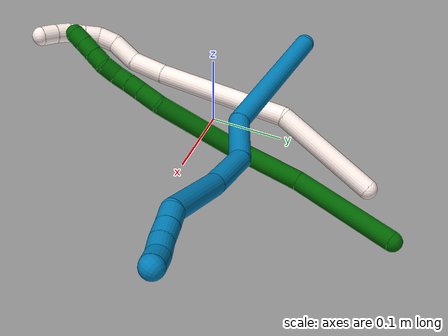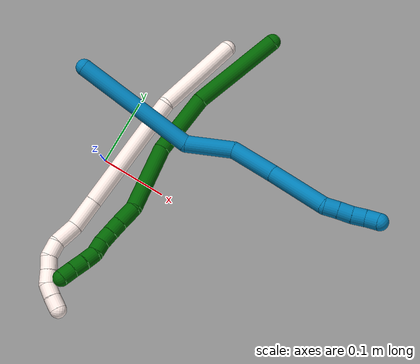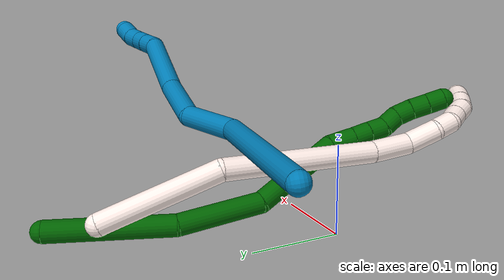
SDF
<sdf version="1.7">
 <world name="default">
  <model name="photoneo_s_sensor">
   <static>1</static>
   <pose>0 0 2 1.57079 1.57079 3.14159</pose>
   <link name="link">
    <inertial><mass>0.1</mass></inertial>
    <sensor name="sensor" type="depth">
     <update_rate>30</update_rate>
     <camera>
      <horizontal_fov>1.22</horizontal_fov>
      <image><width>1920</width><height>1200</height><format>B8G8R8</format></image>
      <clip><near>0.1</near><far>4</far></clip>
      <depth_camera><output>points</output></depth_camera>
     </camera>
     <plugin name="camera_plugin" filename="libgazebo_ros_depth_camera.so">
      <baseline>0.2</baseline>
      <alwaysOn>1</alwaysOn>
      <updateRate>0.0</updateRate>
      <cameraName>camera_ir</cameraName>
      <imageTopicName>/camera/color/image_raw</imageTopicName>
      <cameraInfoTopicName>/camera/color/camera_info</cameraInfoTopicName>
      <depthImageTopicName>/camera/depth/image_raw</depthImageTopicName>
      <depthImageCameraInfoTopicName>/camera/depth/camera_info</depthImageCameraInfoTopicName>
      <pointCloudTopicName>/camera/depth/points</pointCloudTopicName>
      <frameName>fr_optical</frameName>
      <pointCloudCutoff>0.1</pointCloudCutoff>
      <pointCloudCutoffMax>2.0</pointCloudCutoffMax>
      <distortionK1>0</distortionK1>
      <distortionK2>0</distortionK2>
      <distortionK3>0</distortionK3>
      <distortionT1>0</distortionT1>
      <distortionT2>0</distortionT2>
      <CxPrime>0</CxPrime>
      <Cx>0</Cx>
      <Cy>0</Cy>
      <focalLength>0</focalLength>
      <hackBaseline>0</hackBaseline>
     </plugin>
    </sensor>
   </link>
  </model>
  <model name="bin">
   <static>1</static>
   <link name="bottom">
    <collision name="collision-bottom">
     <pose>0 0 -0.01 0 -0 0</pose>
     <geometry><box><size>0.8 0.6 0.02</size></box></geometry>
     <surface>
      <friction><ode><mu>100</mu><mu2>100</mu2></ode></friction>
      <contact><collide_bitmask>65535</collide_bitmask></contact>
     </surface>
    </collision>
   </link>
   <link name="west_wall">
    <collision name="collision-west_wall">
     <pose>-0.41 0 0.1 0 -0 0</pose>
     <geometry><box><size>0.02 0.6 0.2</size></box></geometry>
     <surface>
      <friction><ode><mu>100</mu><mu2>100</mu2></ode></friction>
      <contact><collide_bitmask>65535</collide_bitmask></contact>
     </surface>
    </collision>
   </link>
   <link name="east_wall">
    <collision name="collision-east_wall">
     <pose>0.41 0 0.1 0 -0 0</pose>
     <geometry><box><size>0.02 0.6 0.2</size></box></geometry>
     <surface>
      <friction><ode><mu>100</mu><mu2>100</mu2></ode></friction>
      <contact><collide_bitmask>65535</collide_bitmask></contact>
     </surface>
    </collision>
   </link>
   <link name="south_wall">
    <collision name="collision-south_wall">
     <pose>0 -0.31 0.1 0 -0 0</pose>
     <geometry><box><size>0.8 0.02 0.2</size></box></geometry>
     <surface>
      <friction><ode><mu>100</mu><mu2>100</mu2></ode></friction>
      <contact><collide_bitmask>65535</collide_bitmask></contact>
     </surface>
    </collision>
   </link>
   <link name="north_wall">
    <collision name="collision-north_wall">
     <pose>0 0.31 0.1 0 -0 0</pose>
     <geometry><box><size>0.8 0.02 0.2</size></box></geometry>
     <surface>
      <friction><ode><mu>100</mu><mu2>100</mu2></ode></friction>
      <contact><collide_bitmask>65535</collide_bitmask></contact>
     </surface>
    </collision>
   </link>
  </model>
  <model name="6">
   <static>0</static>
   <link name="6">
    <collision name="collision-cylinder-e_1_1_4">
     <pose>0.01043 -0.006299 -0.068956 3.05049 0.149511 2.04816</pose>
     <geometry><cylinder><radius>0.0125</radius><length>0.140049</length></cylinder></geometry>
     <surface>
      <friction><ode><mu>1.16</mu><mu2>1.16</mu2><slip1>0</slip1><slip2>0</slip2></ode></friction>
      <contact><ode><kp>1e+06</kp><kd>1</kd><max_vel>0</max_vel><min_depth>0.001</min_depth></ode></contact>
     </surface>
    </collision>
    <visual name="visual-cylinder-e_1_1_4">
     <pose>0.01043 -0.006299 -0.068956 3.05049 0.149511 2.04816</pose>
     <geometry><cylinder><radius>0.0125</radius><length>0.140049</length></cylinder></geometry>
     <material><ambient>0 0.392157 0.003922 1</ambient></material>
    </visual>
    <collision name="collision-cylinder-e_2_4_5">
     <pose>0.028938 -0.029738 -0.18228 2.77295 0.168214 0.849345</pose>
     <geometry><cylinder><radius>0.0125</radius><length>0.096487</length></cylinder></geometry>
     <surface>
      <friction><ode><mu>1.16</mu><mu2>1.16</mu2><slip1>0</slip1><slip2>0</slip2></ode></friction>
      <contact><ode><kp>1e+06</kp><kd>1</kd><max_vel>0</max_vel><min_depth>0.001</min_depth></ode></contact>
     </surface>
    </collision>
    <visual name="visual-cylinder-e_2_4_5">
     <pose>0.028938 -0.029738 -0.18228 2.77295 0.168214 0.849345</pose>
     <geometry><cylinder><radius>0.0125</radius><length>0.096487</length></cylinder></geometry>
     <material><ambient>0 0.392157 0.003922 1</ambient></material>
    </visual>
    <collision name="collision-cylinder-e_3_5_6">
     <pose>0.036217 -0.083837 -0.267587 2.40725 -0.014469 -0.037615</pose>
     <geometry><cylinder><radius>0.0125</radius><length>0.110323</length></cylinder></geometry>
     <surface>
      <friction><ode><mu>1.16</mu><mu2>1.16</mu2><slip1>0</slip1><slip2>0</slip2></ode></friction>
      <contact><ode><kp>1e+06</kp><kd>1</kd><max_vel>0</max_vel><min_depth>0.001</min_depth></ode></contact>
     </surface>
    </collision>
    <visual name="visual-cylinder-e_3_5_6">
     <pose>0.036217 -0.083837 -0.267587 2.40725 -0.014469 -0.037615</pose>
     <geometry><cylinder><radius>0.0125</radius><length>0.110323</length></cylinder></geometry>
     <material><ambient>0 0.392157 0.003922 1</ambient></material>
    </visual>
    <collision name="collision-cylinder-e_4_6_7">
     <pose>0.035823 -0.125955 -0.322844 2.79577 0.026552 0.151745</pose>
     <geometry><cylinder><radius>0.0125</radius><length>0.030444</length></cylinder></geometry>
     <surface>
      <friction><ode><mu>1.16</mu><mu2>1.16</mu2><slip1>0</slip1><slip2>0</slip2></ode></friction>
      <contact><ode><kp>1e+06</kp><kd>1</kd><max_vel>0</max_vel><min_depth>0.001</min_depth></ode></contact>
     </surface>
    </collision>
    <visual name="visual-cylinder-e_4_6_7">
     <pose>0.035823 -0.125955 -0.322844 2.79577 0.026552 0.151745</pose>
     <geometry><cylinder><radius>0.0125</radius><length>0.030444</length></cylinder></geometry>
     <material><ambient>0 0.392157 0.003922 1</ambient></material>
    </visual>
    <collision name="collision-cylinder-e_5_7_8">
     <pose>0.036415 -0.134879 -0.346491 2.75799 0.018676 0.096105</pose>
     <geometry><cylinder><radius>0.0125</radius><length>0.020129</length></cylinder></geometry>
     <surface>
      <friction><ode><mu>1.16</mu><mu2>1.16</mu2><slip1>0</slip1><slip2>0</slip2></ode></friction>
      <contact><ode><kp>1e+06</kp><kd>1</kd><max_vel>0</max_vel><min_depth>0.001</min_depth></ode></contact>
     </surface>
    </collision>
    <visual name="visual-cylinder-e_5_7_8">
     <pose>0.036415 -0.134879 -0.346491 2.75799 0.018676 0.096105</pose>
     <geometry><cylinder><radius>0.0125</radius><length>0.020129</length></cylinder></geometry>
     <material><ambient>0 0.392157 0.003922 1</ambient></material>
    </visual>
    <collision name="collision-cylinder-e_6_8_9">
     <pose>0.037121 -0.142399 -0.365316 2.76507 0.050745 0.264849</pose>
     <geometry><cylinder><radius>0.0125</radius><length>0.020443</length></cylinder></geometry>
     <surface>
      <friction><ode><mu>1.16</mu><mu2>1.16</mu2><slip1>0</slip1><slip2>0</slip2></ode></friction>
      <contact><ode><kp>1e+06</kp><kd>1</kd><max_vel>0</max_vel><min_depth>0.001</min_depth></ode></contact>
     </surface>
    </collision>
    <visual name="visual-cylinder-e_6_8_9">
     <pose>0.037121 -0.142399 -0.365316 2.76507 0.050745 0.264849</pose>
     <geometry><cylinder><radius>0.0125</radius><length>0.020443</length></cylinder></geometry>
     <material><ambient>0 0.392157 0.003922 1</ambient></material>
    </visual>
    <collision name="collision-cylinder-e_7_9_10">
     <pose>0.036156 -0.152867 -0.382815 2.44373 -0.141084 -0.383655</pose>
     <geometry><cylinder><radius>0.0125</radius><length>0.021109</length></cylinder></geometry>
     <surface>
      <friction><ode><mu>1.16</mu><mu2>1.16</mu2><slip1>0</slip1><slip2>0</slip2></ode></friction>
      <contact><ode><kp>1e+06</kp><kd>1</kd><max_vel>0</max_vel><min_depth>0.001</min_depth></ode></contact>
     </surface>
    </collision>
    <visual name="visual-cylinder-e_7_9_10">
     <pose>0.036156 -0.152867 -0.382815 2.44373 -0.141084 -0.383655</pose>
     <geometry><cylinder><radius>0.0125</radius><length>0.021109</length></cylinder></geometry>
     <material><ambient>0 0.392157 0.003922 1</ambient></material>
    </visual>
    <collision name="collision-cylinder-e_8_10_11">
     <pose>0.032768 -0.162694 -0.400321 2.82494 -0.188203 -1.06773</pose>
     <geometry><cylinder><radius>0.0125</radius><length>0.020351</length></cylinder></geometry>
     <surface>
      <friction><ode><mu>1.16</mu><mu2>1.16</mu2><slip1>0</slip1><slip2>0</slip2></ode></friction>
      <contact><ode><kp>1e+06</kp><kd>1</kd><max_vel>0</max_vel><min_depth>0.001</min_depth></ode></contact>
     </surface>
    </collision>
    <visual name="visual-cylinder-e_8_10_11">
     <pose>0.032768 -0.162694 -0.400321 2.82494 -0.188203 -1.06773</pose>
     <geometry><cylinder><radius>0.0125</radius><length>0.020351</length></cylinder></geometry>
     <material><ambient>0 0.392157 0.003922 1</ambient></material>
    </visual>
    <collision name="collision-cylinder-e_9_11_12">
     <pose>0.029463 -0.168048 -0.419714 2.91884 -0.137265 -1.10222</pose>
     <geometry><cylinder><radius>0.0125</radius><length>0.020483</length></cylinder></geometry>
     <surface>
      <friction><ode><mu>1.16</mu><mu2>1.16</mu2><slip1>0</slip1><slip2>0</slip2></ode></friction>
      <contact><ode><kp>1e+06</kp><kd>1</kd><max_vel>0</max_vel><min_depth>0.001</min_depth></ode></contact>
     </surface>
    </collision>
    <visual name="visual-cylinder-e_9_11_12">
     <pose>0.029463 -0.168048 -0.419714 2.91884 -0.137265 -1.10222</pose>
     <geometry><cylinder><radius>0.0125</radius><length>0.020483</length></cylinder></geometry>
     <material><ambient>0 0.392157 0.003922 1</ambient></material>
    </visual>
    <collision name="collision-cylinder-e_10_12_2">
     <pose>0.026852 -0.172798 -0.439307 2.88842 -0.120141 -0.882946</pose>
     <geometry><cylinder><radius>0.0125</radius><length>0.020182</length></cylinder></geometry>
     <surface>
      <friction><ode><mu>1.16</mu><mu2>1.16</mu2><slip1>0</slip1><slip2>0</slip2></ode></friction>
      <contact><ode><kp>1e+06</kp><kd>1</kd><max_vel>0</max_vel><min_depth>0.001</min_depth></ode></contact>
     </surface>
    </collision>
    <visual name="visual-cylinder-e_10_12_2">
     <pose>0.026852 -0.172798 -0.439307 2.88842 -0.120141 -0.882946</pose>
     <geometry><cylinder><radius>0.0125</radius><length>0.020182</length></cylinder></geometry>
     <material><ambient>0 0.392157 0.003922 1</ambient></material>
    </visual>
    <collision name="collision-sphere-2">
     <pose>0.025643 -0.175308 -0.449006 0 -0 0</pose>
     <geometry><sphere><radius>0.0125</radius></sphere></geometry>
     <surface>
      <friction><ode><mu>1.16</mu><mu2>1.16</mu2><slip1>0</slip1><slip2>0</slip2></ode></friction>
      <contact><ode><kp>1e+06</kp><kd>1</kd><max_vel>0</max_vel><min_depth>0.001</min_depth></ode></contact>
     </surface>
    </collision>
    <visual name="visual-sphere-2">
     <pose>0.025643 -0.175308 -0.449006 0 -0 0</pose>
     <geometry><sphere><radius>0.0125</radius></sphere></geometry>
     <material><ambient>0 0.392157 0.003922 1</ambient></material>
    </visual>
    <collision name="collision-sphere-12">
     <pose>0.028061 -0.170289 -0.429608 0 -0 0</pose>
     <geometry><sphere><radius>0.0125</radius></sphere></geometry>
     <surface>
      <friction><ode><mu>1.16</mu><mu2>1.16</mu2><slip1>0</slip1><slip2>0</slip2></ode></friction>
      <contact><ode><kp>1e+06</kp><kd>1</kd><max_vel>0</max_vel><min_depth>0.001</min_depth></ode></contact>
     </surface>
    </collision>
    <visual name="visual-sphere-12">
     <pose>0.028061 -0.170289 -0.429608 0 -0 0</pose>
     <geometry><sphere><radius>0.0125</radius></sphere></geometry>
     <material><ambient>0 0.392157 0.003922 1</ambient></material>
    </visual>
    <collision name="collision-sphere-11">
     <pose>0.030864 -0.165807 -0.40982 0 -0 0</pose>
     <geometry><sphere><radius>0.0125</radius></sphere></geometry>
     <surface>
      <friction><ode><mu>1.16</mu><mu2>1.16</mu2><slip1>0</slip1><slip2>0</slip2></ode></friction>
      <contact><ode><kp>1e+06</kp><kd>1</kd><max_vel>0</max_vel><min_depth>0.001</min_depth></ode></contact>
     </surface>
    </collision>
    <visual name="visual-sphere-11">
     <pose>0.030864 -0.165807 -0.40982 0 -0 0</pose>
     <geometry><sphere><radius>0.0125</radius></sphere></geometry>
     <material><ambient>0 0.392157 0.003922 1</ambient></material>
    </visual>
    <collision name="collision-sphere-10">
     <pose>0.034672 -0.159582 -0.390822 0 -0 0</pose>
     <geometry><sphere><radius>0.0125</radius></sphere></geometry>
     <surface>
      <friction><ode><mu>1.16</mu><mu2>1.16</mu2><slip1>0</slip1><slip2>0</slip2></ode></friction>
      <contact><ode><kp>1e+06</kp><kd>1</kd><max_vel>0</max_vel><min_depth>0.001</min_depth></ode></contact>
     </surface>
    </collision>
    <visual name="visual-sphere-10">
     <pose>0.034672 -0.159582 -0.390822 0 -0 0</pose>
     <geometry><sphere><radius>0.0125</radius></sphere></geometry>
     <material><ambient>0 0.392157 0.003922 1</ambient></material>
    </visual>
    <collision name="collision-sphere-9">
     <pose>0.03764 -0.146152 -0.374809 0 -0 0</pose>
     <geometry><sphere><radius>0.0125</radius></sphere></geometry>
     <surface>
      <friction><ode><mu>1.16</mu><mu2>1.16</mu2><slip1>0</slip1><slip2>0</slip2></ode></friction>
      <contact><ode><kp>1e+06</kp><kd>1</kd><max_vel>0</max_vel><min_depth>0.001</min_depth></ode></contact>
     </surface>
    </collision>
    <visual name="visual-sphere-9">
     <pose>0.03764 -0.146152 -0.374809 0 -0 0</pose>
     <geometry><sphere><radius>0.0125</radius></sphere></geometry>
     <material><ambient>0 0.392157 0.003922 1</ambient></material>
    </visual>
    <collision name="collision-sphere-4">
     <pose>0.020861 -0.012599 -0.137912 0 -0 0</pose>
     <geometry><sphere><radius>0.0125</radius></sphere></geometry>
     <surface>
      <friction><ode><mu>1.16</mu><mu2>1.16</mu2><slip1>0</slip1><slip2>0</slip2></ode></friction>
      <contact><ode><kp>1e+06</kp><kd>1</kd><max_vel>0</max_vel><min_depth>0.001</min_depth></ode></contact>
     </surface>
    </collision>
    <visual name="visual-sphere-4">
     <pose>0.020861 -0.012599 -0.137912 0 -0 0</pose>
     <geometry><sphere><radius>0.0125</radius></sphere></geometry>
     <material><ambient>0 0.392157 0.003922 1</ambient></material>
    </visual>
    <collision name="collision-sphere-1">
     <geometry><sphere><radius>0.0125</radius></sphere></geometry>
     <surface>
      <friction><ode><mu>1.16</mu><mu2>1.16</mu2><slip1>0</slip1><slip2>0</slip2></ode></friction>
      <contact><ode><kp>1e+06</kp><kd>1</kd><max_vel>0</max_vel><min_depth>0.001</min_depth></ode></contact>
     </surface>
    </collision>
    <visual name="visual-sphere-1">
     <geometry><sphere><radius>0.0125</radius></sphere></geometry>
     <material><ambient>0 0.392157 0.003922 1</ambient></material>
    </visual>
    <collision name="collision-sphere-8">
     <pose>0.036603 -0.138645 -0.355822 0 -0 0</pose>
     <geometry><sphere><radius>0.0125</radius></sphere></geometry>
     <surface>
      <friction><ode><mu>1.16</mu><mu2>1.16</mu2><slip1>0</slip1><slip2>0</slip2></ode></friction>
      <contact><ode><kp>1e+06</kp><kd>1</kd><max_vel>0</max_vel><min_depth>0.001</min_depth></ode></contact>
     </surface>
    </collision>
    <visual name="visual-sphere-8">
     <pose>0.036603 -0.138645 -0.355822 0 -0 0</pose>
     <geometry><sphere><radius>0.0125</radius></sphere></geometry>
     <material><ambient>0 0.392157 0.003922 1</ambient></material>
    </visual>
    <collision name="collision-sphere-5">
     <pose>0.037015 -0.046877 -0.226647 0 -0 0</pose>
     <geometry><sphere><radius>0.0125</radius></sphere></geometry>
     <surface>
      <friction><ode><mu>1.16</mu><mu2>1.16</mu2><slip1>0</slip1><slip2>0</slip2></ode></friction>
      <contact><ode><kp>1e+06</kp><kd>1</kd><max_vel>0</max_vel><min_depth>0.001</min_depth></ode></contact>
     </surface>
    </collision>
    <visual name="visual-sphere-5">
     <pose>0.037015 -0.046877 -0.226647 0 -0 0</pose>
     <geometry><sphere><radius>0.0125</radius></sphere></geometry>
     <material><ambient>0 0.392157 0.003922 1</ambient></material>
    </visual>
    <collision name="collision-sphere-6">
     <pose>0.035419 -0.120797 -0.308528 0 -0 0</pose>
     <geometry><sphere><radius>0.0125</radius></sphere></geometry>
     <surface>
      <friction><ode><mu>1.16</mu><mu2>1.16</mu2><slip1>0</slip1><slip2>0</slip2></ode></friction>
      <contact><ode><kp>1e+06</kp><kd>1</kd><max_vel>0</max_vel><min_depth>0.001</min_depth></ode></contact>
     </surface>
    </collision>
    <visual name="visual-sphere-6">
     <pose>0.035419 -0.120797 -0.308528 0 -0 0</pose>
     <geometry><sphere><radius>0.0125</radius></sphere></geometry>
     <material><ambient>0 0.392157 0.003922 1</ambient></material>
    </visual>
    <collision name="collision-sphere-7">
     <pose>0.036227 -0.131113 -0.33716 0 -0 0</pose>
     <geometry><sphere><radius>0.0125</radius></sphere></geometry>
     <surface>
      <friction><ode><mu>1.16</mu><mu2>1.16</mu2><slip1>0</slip1><slip2>0</slip2></ode></friction>
      <contact><ode><kp>1e+06</kp><kd>1</kd><max_vel>0</max_vel><min_depth>0.001</min_depth></ode></contact>
     </surface>
    </collision>
    <visual name="visual-sphere-7">
     <pose>0.036227 -0.131113 -0.33716 0 -0 0</pose>
     <geometry><sphere><radius>0.0125</radius></sphere></geometry>
     <material><ambient>0 0.392157 0.003922 1</ambient></material>
    </visual>
    <inertial>
     <pose>0.026813 -0.071857 -0.229456 0 -0 0</pose>
     <mass>0.5</mass>
     <inertia>
      <ixx>0.000329</ixx>
      <ixy>0</ixy>
      <ixz>0</ixz>
      <iyy>0.000213</iyy>
      <iyz>0</iyz>
      <izz>5.1e-05</izz>
     </inertia>
    </inertial>
   </link>
   <pose>0.124186 0.283773 0.01142 -1.69432 0.953664 -0.610468</pose>
  </model>
  <model name="9">
   <static>0</static>
   <link name="9">
    <collision name="collision-cylinder-e_1_1_4">
     <pose>0.028499 0.085243 0.020532 -1.33443 0.314259 -0.248326</pose>
     <geometry><cylinder><radius>0.0125</radius><length>0.184392</length></cylinder></geometry>
     <surface>
      <friction><ode><mu>1.16</mu><mu2>1.16</mu2><slip1>0</slip1><slip2>0</slip2></ode></friction>
      <contact><ode><kp>1e+06</kp><kd>1</kd><max_vel>0</max_vel><min_depth>0.001</min_depth></ode></contact>
     </surface>
    </collision>
    <visual name="visual-cylinder-e_1_1_4">
     <pose>0.028499 0.085243 0.020532 -1.33443 0.314259 -0.248326</pose>
     <geometry><cylinder><radius>0.0125</radius><length>0.184392</length></cylinder></geometry>
     <material><ambient>0 0.490196 0.709804 1</ambient></material>
    </visual>
    <collision name="collision-cylinder-e_2_4_5">
     <pose>0.069734 0.193767 0.064233 -0.787794 0.369917 -0.155209</pose>
     <geometry><cylinder><radius>0.0125</radius><length>0.070456</length></cylinder></geometry>
     <surface>
      <friction><ode><mu>1.16</mu><mu2>1.16</mu2><slip1>0</slip1><slip2>0</slip2></ode></friction>
      <contact><ode><kp>1e+06</kp><kd>1</kd><max_vel>0</max_vel><min_depth>0.001</min_depth></ode></contact>
     </surface>
    </collision>
    <visual name="visual-cylinder-e_2_4_5">
     <pose>0.069734 0.193767 0.064233 -0.787794 0.369917 -0.155209</pose>
     <geometry><cylinder><radius>0.0125</radius><length>0.070456</length></cylinder></geometry>
     <material><ambient>0 0.490196 0.709804 1</ambient></material>
    </visual>
    <collision name="collision-cylinder-e_3_5_6">
     <pose>0.102927 0.24417 0.095757 -1.27198 0.624565 -0.468002</pose>
     <geometry><cylinder><radius>0.0125</radius><length>0.069969</length></cylinder></geometry>
     <surface>
      <friction><ode><mu>1.16</mu><mu2>1.16</mu2><slip1>0</slip1><slip2>0</slip2></ode></friction>
      <contact><ode><kp>1e+06</kp><kd>1</kd><max_vel>0</max_vel><min_depth>0.001</min_depth></ode></contact>
     </surface>
    </collision>
    <visual name="visual-cylinder-e_3_5_6">
     <pose>0.102927 0.24417 0.095757 -1.27198 0.624565 -0.468002</pose>
     <geometry><cylinder><radius>0.0125</radius><length>0.069969</length></cylinder></geometry>
     <material><ambient>0 0.490196 0.709804 1</ambient></material>
    </visual>
    <collision name="collision-cylinder-e_4_6_7">
     <pose>0.156218 0.303787 0.112334 -1.32296 0.775079 -0.615342</pose>
     <geometry><cylinder><radius>0.0125</radius><length>0.093842</length></cylinder></geometry>
     <surface>
      <friction><ode><mu>1.16</mu><mu2>1.16</mu2><slip1>0</slip1><slip2>0</slip2></ode></friction>
      <contact><ode><kp>1e+06</kp><kd>1</kd><max_vel>0</max_vel><min_depth>0.001</min_depth></ode></contact>
     </surface>
    </collision>
    <visual name="visual-cylinder-e_4_6_7">
     <pose>0.156218 0.303787 0.112334 -1.32296 0.775079 -0.615342</pose>
     <geometry><cylinder><radius>0.0125</radius><length>0.093842</length></cylinder></geometry>
     <material><ambient>0 0.490196 0.709804 1</ambient></material>
    </visual>
    <collision name="collision-cylinder-e_5_7_8">
     <pose>0.193177 0.343987 0.125901 -0.96443 0.414361 -0.219165</pose>
     <geometry><cylinder><radius>0.0125</radius><length>0.02049</length></cylinder></geometry>
     <surface>
      <friction><ode><mu>1.16</mu><mu2>1.16</mu2><slip1>0</slip1><slip2>0</slip2></ode></friction>
      <contact><ode><kp>1e+06</kp><kd>1</kd><max_vel>0</max_vel><min_depth>0.001</min_depth></ode></contact>
     </surface>
    </collision>
    <visual name="visual-cylinder-e_5_7_8">
     <pose>0.193177 0.343987 0.125901 -0.96443 0.414361 -0.219165</pose>
     <geometry><cylinder><radius>0.0125</radius><length>0.02049</length></cylinder></geometry>
     <material><ambient>0 0.490196 0.709804 1</ambient></material>
    </visual>
    <collision name="collision-cylinder-e_6_8_9">
     <pose>0.201323 0.359506 0.136089 -1.01584 0.412341 -0.231786</pose>
     <geometry><cylinder><radius>0.0125</radius><length>0.020067</length></cylinder></geometry>
     <surface>
      <friction><ode><mu>1.16</mu><mu2>1.16</mu2><slip1>0</slip1><slip2>0</slip2></ode></friction>
      <contact><ode><kp>1e+06</kp><kd>1</kd><max_vel>0</max_vel><min_depth>0.001</min_depth></ode></contact>
     </surface>
    </collision>
    <visual name="visual-cylinder-e_6_8_9">
     <pose>0.201323 0.359506 0.136089 -1.01584 0.412341 -0.231786</pose>
     <geometry><cylinder><radius>0.0125</radius><length>0.020067</length></cylinder></geometry>
     <material><ambient>0 0.490196 0.709804 1</ambient></material>
    </visual>
    <collision name="collision-cylinder-e_7_9_10">
     <pose>0.209921 0.374366 0.146697 -0.88516 0.465879 -0.223938</pose>
     <geometry><cylinder><radius>0.0125</radius><length>0.020382</length></cylinder></geometry>
     <surface>
      <friction><ode><mu>1.16</mu><mu2>1.16</mu2><slip1>0</slip1><slip2>0</slip2></ode></friction>
      <contact><ode><kp>1e+06</kp><kd>1</kd><max_vel>0</max_vel><min_depth>0.001</min_depth></ode></contact>
     </surface>
    </collision>
    <visual name="visual-cylinder-e_7_9_10">
     <pose>0.209921 0.374366 0.146697 -0.88516 0.465879 -0.223938</pose>
     <geometry><cylinder><radius>0.0125</radius><length>0.020382</length></cylinder></geometry>
     <material><ambient>0 0.490196 0.709804 1</ambient></material>
    </visual>
    <collision name="collision-cylinder-e_8_10_2">
     <pose>0.221421 0.387513 0.156815 -0.950941 0.74571 -0.397465</pose>
     <geometry><cylinder><radius>0.0125</radius><length>0.020402</length></cylinder></geometry>
     <surface>
      <friction><ode><mu>1.16</mu><mu2>1.16</mu2><slip1>0</slip1><slip2>0</slip2></ode></friction>
      <contact><ode><kp>1e+06</kp><kd>1</kd><max_vel>0</max_vel><min_depth>0.001</min_depth></ode></contact>
     </surface>
    </collision>
    <visual name="visual-cylinder-e_8_10_2">
     <pose>0.221421 0.387513 0.156815 -0.950941 0.74571 -0.397465</pose>
     <geometry><cylinder><radius>0.0125</radius><length>0.020402</length></cylinder></geometry>
     <material><ambient>0 0.490196 0.709804 1</ambient></material>
    </visual>
    <collision name="collision-sphere-2">
     <pose>0.228342 0.393613 0.161169 0 -0 0</pose>
     <geometry><sphere><radius>0.0125</radius></sphere></geometry>
     <surface>
      <friction><ode><mu>1.16</mu><mu2>1.16</mu2><slip1>0</slip1><slip2>0</slip2></ode></friction>
      <contact><ode><kp>1e+06</kp><kd>1</kd><max_vel>0</max_vel><min_depth>0.001</min_depth></ode></contact>
     </surface>
    </collision>
    <visual name="visual-sphere-2">
     <pose>0.228342 0.393613 0.161169 0 -0 0</pose>
     <geometry><sphere><radius>0.0125</radius></sphere></geometry>
     <material><ambient>0 0.490196 0.709804 1</ambient></material>
    </visual>
    <collision name="collision-sphere-10">
     <pose>0.214499 0.381414 0.152462 0 -0 0</pose>
     <geometry><sphere><radius>0.0125</radius></sphere></geometry>
     <surface>
      <friction><ode><mu>1.16</mu><mu2>1.16</mu2><slip1>0</slip1><slip2>0</slip2></ode></friction>
      <contact><ode><kp>1e+06</kp><kd>1</kd><max_vel>0</max_vel><min_depth>0.001</min_depth></ode></contact>
     </surface>
    </collision>
    <visual name="visual-sphere-10">
     <pose>0.214499 0.381414 0.152462 0 -0 0</pose>
     <geometry><sphere><radius>0.0125</radius></sphere></geometry>
     <material><ambient>0 0.490196 0.709804 1</ambient></material>
    </visual>
    <collision name="collision-sphere-9">
     <pose>0.205344 0.367319 0.140932 0 -0 0</pose>
     <geometry><sphere><radius>0.0125</radius></sphere></geometry>
     <surface>
      <friction><ode><mu>1.16</mu><mu2>1.16</mu2><slip1>0</slip1><slip2>0</slip2></ode></friction>
      <contact><ode><kp>1e+06</kp><kd>1</kd><max_vel>0</max_vel><min_depth>0.001</min_depth></ode></contact>
     </surface>
    </collision>
    <visual name="visual-sphere-9">
     <pose>0.205344 0.367319 0.140932 0 -0 0</pose>
     <geometry><sphere><radius>0.0125</radius></sphere></geometry>
     <material><ambient>0 0.490196 0.709804 1</ambient></material>
    </visual>
    <collision name="collision-sphere-4">
     <pose>0.056998 0.170486 0.041064 0 -0 0</pose>
     <geometry><sphere><radius>0.0125</radius></sphere></geometry>
     <surface>
      <friction><ode><mu>1.16</mu><mu2>1.16</mu2><slip1>0</slip1><slip2>0</slip2></ode></friction>
      <contact><ode><kp>1e+06</kp><kd>1</kd><max_vel>0</max_vel><min_depth>0.001</min_depth></ode></contact>
     </surface>
    </collision>
    <visual name="visual-sphere-4">
     <pose>0.056998 0.170486 0.041064 0 -0 0</pose>
     <geometry><sphere><radius>0.0125</radius></sphere></geometry>
     <material><ambient>0 0.490196 0.709804 1</ambient></material>
    </visual>
    <collision name="collision-sphere-1">
     <geometry><sphere><radius>0.0125</radius></sphere></geometry>
     <surface>
      <friction><ode><mu>1.16</mu><mu2>1.16</mu2><slip1>0</slip1><slip2>0</slip2></ode></friction>
      <contact><ode><kp>1e+06</kp><kd>1</kd><max_vel>0</max_vel><min_depth>0.001</min_depth></ode></contact>
     </surface>
    </collision>
    <visual name="visual-sphere-1">
     <geometry><sphere><radius>0.0125</radius></sphere></geometry>
     <material><ambient>0 0.490196 0.709804 1</ambient></material>
    </visual>
    <collision name="collision-sphere-8">
     <pose>0.197302 0.351693 0.131245 0 -0 0</pose>
     <geometry><sphere><radius>0.0125</radius></sphere></geometry>
     <surface>
      <friction><ode><mu>1.16</mu><mu2>1.16</mu2><slip1>0</slip1><slip2>0</slip2></ode></friction>
      <contact><ode><kp>1e+06</kp><kd>1</kd><max_vel>0</max_vel><min_depth>0.001</min_depth></ode></contact>
     </surface>
    </collision>
    <visual name="visual-sphere-8">
     <pose>0.197302 0.351693 0.131245 0 -0 0</pose>
     <geometry><sphere><radius>0.0125</radius></sphere></geometry>
     <material><ambient>0 0.490196 0.709804 1</ambient></material>
    </visual>
    <collision name="collision-sphere-5">
     <pose>0.08247 0.217047 0.087403 0 -0 0</pose>
     <geometry><sphere><radius>0.0125</radius></sphere></geometry>
     <surface>
      <friction><ode><mu>1.16</mu><mu2>1.16</mu2><slip1>0</slip1><slip2>0</slip2></ode></friction>
      <contact><ode><kp>1e+06</kp><kd>1</kd><max_vel>0</max_vel><min_depth>0.001</min_depth></ode></contact>
     </surface>
    </collision>
    <visual name="visual-sphere-5">
     <pose>0.08247 0.217047 0.087403 0 -0 0</pose>
     <geometry><sphere><radius>0.0125</radius></sphere></geometry>
     <material><ambient>0 0.490196 0.709804 1</ambient></material>
    </visual>
    <collision name="collision-sphere-6">
     <pose>0.123384 0.271292 0.104112 0 -0 0</pose>
     <geometry><sphere><radius>0.0125</radius></sphere></geometry>
     <surface>
      <friction><ode><mu>1.16</mu><mu2>1.16</mu2><slip1>0</slip1><slip2>0</slip2></ode></friction>
      <contact><ode><kp>1e+06</kp><kd>1</kd><max_vel>0</max_vel><min_depth>0.001</min_depth></ode></contact>
     </surface>
    </collision>
    <visual name="visual-sphere-6">
     <pose>0.123384 0.271292 0.104112 0 -0 0</pose>
     <geometry><sphere><radius>0.0125</radius></sphere></geometry>
     <material><ambient>0 0.490196 0.709804 1</ambient></material>
    </visual>
    <collision name="collision-sphere-7">
     <pose>0.189052 0.336281 0.120557 0 -0 0</pose>
     <geometry><sphere><radius>0.0125</radius></sphere></geometry>
     <surface>
      <friction><ode><mu>1.16</mu><mu2>1.16</mu2><slip1>0</slip1><slip2>0</slip2></ode></friction>
      <contact><ode><kp>1e+06</kp><kd>1</kd><max_vel>0</max_vel><min_depth>0.001</min_depth></ode></contact>
     </surface>
    </collision>
    <visual name="visual-sphere-7">
     <pose>0.189052 0.336281 0.120557 0 -0 0</pose>
     <geometry><sphere><radius>0.0125</radius></sphere></geometry>
     <material><ambient>0 0.490196 0.709804 1</ambient></material>
    </visual>
    <inertial>
     <pose>0.097648 0.209522 0.074106 0 -0 0</pose>
     <mass>0.5</mass>
     <inertia>
      <ixx>0.000434</ixx>
      <ixy>0</ixy>
      <ixz>0</ixz>
      <iyy>0.000106</iyy>
      <iyz>0</iyz>
      <izz>-0.000824</izz>
     </inertia>
    </inertial>
   </link>
   <pose>-0.085936 0.096462 0.101101 -2.01121 -1.2591 0.086479</pose>
  </model>
  <model name="11">
   <static>0</static>
   <link name="11">
    <collision name="collision-cylinder-e_1_1_4">
     <pose>-0.031864 -0.046273 -0.037675 2.25413 -0.490477 -0.969263</pose>
     <geometry><cylinder><radius>0.0125</radius><length>0.135292</length></cylinder></geometry>
     <surface>
      <friction><ode><mu>1.16</mu><mu2>1.16</mu2><slip1>0</slip1><slip2>0</slip2></ode></friction>
      <contact><ode><kp>1e+06</kp><kd>1</kd><max_vel>0</max_vel><min_depth>0.001</min_depth></ode></contact>
     </surface>
    </collision>
    <visual name="visual-cylinder-e_1_1_4">
     <pose>-0.031864 -0.046273 -0.037675 2.25413 -0.490477 -0.969263</pose>
     <geometry><cylinder><radius>0.0125</radius><length>0.135292</length></cylinder></geometry>
     <material><ambient>1 0.933333 0.909804 1</ambient></material>
    </visual>
    <collision name="collision-cylinder-e_2_4_5">
     <pose>-0.074481 -0.168819 -0.118925 2.08984 -0.121794 -0.20934</pose>
     <geometry><cylinder><radius>0.0125</radius><length>0.176995</length></cylinder></geometry>
     <surface>
      <friction><ode><mu>1.16</mu><mu2>1.16</mu2><slip1>0</slip1><slip2>0</slip2></ode></friction>
      <contact><ode><kp>1e+06</kp><kd>1</kd><max_vel>0</max_vel><min_depth>0.001</min_depth></ode></contact>
     </surface>
    </collision>
    <visual name="visual-cylinder-e_2_4_5">
     <pose>-0.074481 -0.168819 -0.118925 2.08984 -0.121794 -0.20934</pose>
     <geometry><cylinder><radius>0.0125</radius><length>0.176995</length></cylinder></geometry>
     <material><ambient>1 0.933333 0.909804 1</ambient></material>
    </visual>
    <collision name="collision-cylinder-e_3_5_6">
     <pose>-0.090476 -0.264881 -0.173478 2.07731 -0.227697 -0.38362</pose>
     <geometry><cylinder><radius>0.0125</radius><length>0.04646</length></cylinder></geometry>
     <surface>
      <friction><ode><mu>1.16</mu><mu2>1.16</mu2><slip1>0</slip1><slip2>0</slip2></ode></friction>
      <contact><ode><kp>1e+06</kp><kd>1</kd><max_vel>0</max_vel><min_depth>0.001</min_depth></ode></contact>
     </surface>
    </collision>
    <visual name="visual-cylinder-e_3_5_6">
     <pose>-0.090476 -0.264881 -0.173478 2.07731 -0.227697 -0.38362</pose>
     <geometry><cylinder><radius>0.0125</radius><length>0.04646</length></cylinder></geometry>
     <material><ambient>1 0.933333 0.909804 1</ambient></material>
    </visual>
    <collision name="collision-cylinder-e_4_6_7">
     <pose>-0.104894 -0.296978 -0.194831 2.27113 -0.518005 -1.03589</pose>
     <geometry><cylinder><radius>0.0125</radius><length>0.037056</length></cylinder></geometry>
     <surface>
      <friction><ode><mu>1.16</mu><mu2>1.16</mu2><slip1>0</slip1><slip2>0</slip2></ode></friction>
      <contact><ode><kp>1e+06</kp><kd>1</kd><max_vel>0</max_vel><min_depth>0.001</min_depth></ode></contact>
     </surface>
    </collision>
    <visual name="visual-cylinder-e_4_6_7">
     <pose>-0.104894 -0.296978 -0.194831 2.27113 -0.518005 -1.03589</pose>
     <geometry><cylinder><radius>0.0125</radius><length>0.037056</length></cylinder></geometry>
     <material><ambient>1 0.933333 0.909804 1</ambient></material>
    </visual>
    <collision name="collision-cylinder-e_5_7_8">
     <pose>-0.118625 -0.319581 -0.208869 1.9127 -0.395058 -0.552801</pose>
     <geometry><cylinder><radius>0.0125</radius><length>0.023678</length></cylinder></geometry>
     <surface>
      <friction><ode><mu>1.16</mu><mu2>1.16</mu2><slip1>0</slip1><slip2>0</slip2></ode></friction>
      <contact><ode><kp>1e+06</kp><kd>1</kd><max_vel>0</max_vel><min_depth>0.001</min_depth></ode></contact>
     </surface>
    </collision>
    <visual name="visual-cylinder-e_5_7_8">
     <pose>-0.118625 -0.319581 -0.208869 1.9127 -0.395058 -0.552801</pose>
     <geometry><cylinder><radius>0.0125</radius><length>0.023678</length></cylinder></geometry>
     <material><ambient>1 0.933333 0.909804 1</ambient></material>
    </visual>
    <collision name="collision-cylinder-e_6_8_9">
     <pose>-0.126352 -0.339389 -0.211055 1.41671 -0.318163 -0.273174</pose>
     <geometry><cylinder><radius>0.0125</radius><length>0.020273</length></cylinder></geometry>
     <surface>
      <friction><ode><mu>1.16</mu><mu2>1.16</mu2><slip1>0</slip1><slip2>0</slip2></ode></friction>
      <contact><ode><kp>1e+06</kp><kd>1</kd><max_vel>0</max_vel><min_depth>0.001</min_depth></ode></contact>
     </surface>
    </collision>
    <visual name="visual-cylinder-e_6_8_9">
     <pose>-0.126352 -0.339389 -0.211055 1.41671 -0.318163 -0.273174</pose>
     <geometry><cylinder><radius>0.0125</radius><length>0.020273</length></cylinder></geometry>
     <material><ambient>1 0.933333 0.909804 1</ambient></material>
    </visual>
    <collision name="collision-cylinder-e_7_9_10">
     <pose>-0.132814 -0.358439 -0.208864 1.49613 -0.331439 -0.30796</pose>
     <geometry><cylinder><radius>0.0125</radius><length>0.020226</length></cylinder></geometry>
     <surface>
      <friction><ode><mu>1.16</mu><mu2>1.16</mu2><slip1>0</slip1><slip2>0</slip2></ode></friction>
      <contact><ode><kp>1e+06</kp><kd>1</kd><max_vel>0</max_vel><min_depth>0.001</min_depth></ode></contact>
     </surface>
    </collision>
    <visual name="visual-cylinder-e_7_9_10">
     <pose>-0.132814 -0.358439 -0.208864 1.49613 -0.331439 -0.30796</pose>
     <geometry><cylinder><radius>0.0125</radius><length>0.020226</length></cylinder></geometry>
     <material><ambient>1 0.933333 0.909804 1</ambient></material>
    </visual>
    <collision name="collision-cylinder-e_8_10_11">
     <pose>-0.139077 -0.376162 -0.203221 1.02878 -0.301548 -0.171298</pose>
     <geometry><cylinder><radius>0.0125</radius><length>0.020016</length></cylinder></geometry>
     <surface>
      <friction><ode><mu>1.16</mu><mu2>1.16</mu2><slip1>0</slip1><slip2>0</slip2></ode></friction>
      <contact><ode><kp>1e+06</kp><kd>1</kd><max_vel>0</max_vel><min_depth>0.001</min_depth></ode></contact>
     </surface>
    </collision>
    <visual name="visual-cylinder-e_8_10_11">
     <pose>-0.139077 -0.376162 -0.203221 1.02878 -0.301548 -0.171298</pose>
     <geometry><cylinder><radius>0.0125</radius><length>0.020016</length></cylinder></geometry>
     <material><ambient>1 0.933333 0.909804 1</ambient></material>
    </visual>
    <collision name="collision-cylinder-e_9_11_2">
     <pose>-0.144414 -0.392347 -0.192771 0.966765 -0.238656 -0.125707</pose>
     <geometry><cylinder><radius>0.0125</radius><length>0.020003</length></cylinder></geometry>
     <surface>
      <friction><ode><mu>1.16</mu><mu2>1.16</mu2><slip1>0</slip1><slip2>0</slip2></ode></friction>
      <contact><ode><kp>1e+06</kp><kd>1</kd><max_vel>0</max_vel><min_depth>0.001</min_depth></ode></contact>
     </surface>
    </collision>
    <visual name="visual-cylinder-e_9_11_2">
     <pose>-0.144414 -0.392347 -0.192771 0.966765 -0.238656 -0.125707</pose>
     <geometry><cylinder><radius>0.0125</radius><length>0.020003</length></cylinder></geometry>
     <material><ambient>1 0.933333 0.909804 1</ambient></material>
    </visual>
    <collision name="collision-sphere-2">
     <pose>-0.146778 -0.400346 -0.187252 0 -0 0</pose>
     <geometry><sphere><radius>0.0125</radius></sphere></geometry>
     <surface>
      <friction><ode><mu>1.16</mu><mu2>1.16</mu2><slip1>0</slip1><slip2>0</slip2></ode></friction>
      <contact><ode><kp>1e+06</kp><kd>1</kd><max_vel>0</max_vel><min_depth>0.001</min_depth></ode></contact>
     </surface>
    </collision>
    <visual name="visual-sphere-2">
     <pose>-0.146778 -0.400346 -0.187252 0 -0 0</pose>
     <geometry><sphere><radius>0.0125</radius></sphere></geometry>
     <material><ambient>1 0.933333 0.909804 1</ambient></material>
    </visual>
    <collision name="collision-sphere-11">
     <pose>-0.14205 -0.384349 -0.198291 0 -0 0</pose>
     <geometry><sphere><radius>0.0125</radius></sphere></geometry>
     <surface>
      <friction><ode><mu>1.16</mu><mu2>1.16</mu2><slip1>0</slip1><slip2>0</slip2></ode></friction>
      <contact><ode><kp>1e+06</kp><kd>1</kd><max_vel>0</max_vel><min_depth>0.001</min_depth></ode></contact>
     </surface>
    </collision>
    <visual name="visual-sphere-11">
     <pose>-0.14205 -0.384349 -0.198291 0 -0 0</pose>
     <geometry><sphere><radius>0.0125</radius></sphere></geometry>
     <material><ambient>1 0.933333 0.909804 1</ambient></material>
    </visual>
    <collision name="collision-sphere-10">
     <pose>-0.136105 -0.367976 -0.208151 0 -0 0</pose>
     <geometry><sphere><radius>0.0125</radius></sphere></geometry>
     <surface>
      <friction><ode><mu>1.16</mu><mu2>1.16</mu2><slip1>0</slip1><slip2>0</slip2></ode></friction>
      <contact><ode><kp>1e+06</kp><kd>1</kd><max_vel>0</max_vel><min_depth>0.001</min_depth></ode></contact>
     </surface>
    </collision>
    <visual name="visual-sphere-10">
     <pose>-0.136105 -0.367976 -0.208151 0 -0 0</pose>
     <geometry><sphere><radius>0.0125</radius></sphere></geometry>
     <material><ambient>1 0.933333 0.909804 1</ambient></material>
    </visual>
    <collision name="collision-sphere-9">
     <pose>-0.129523 -0.348903 -0.209577 0 -0 0</pose>
     <geometry><sphere><radius>0.0125</radius></sphere></geometry>
     <surface>
      <friction><ode><mu>1.16</mu><mu2>1.16</mu2><slip1>0</slip1><slip2>0</slip2></ode></friction>
      <contact><ode><kp>1e+06</kp><kd>1</kd><max_vel>0</max_vel><min_depth>0.001</min_depth></ode></contact>
     </surface>
    </collision>
    <visual name="visual-sphere-9">
     <pose>-0.129523 -0.348903 -0.209577 0 -0 0</pose>
     <geometry><sphere><radius>0.0125</radius></sphere></geometry>
     <material><ambient>1 0.933333 0.909804 1</ambient></material>
    </visual>
    <collision name="collision-sphere-4">
     <pose>-0.063729 -0.092547 -0.075351 0 -0 0</pose>
     <geometry><sphere><radius>0.0125</radius></sphere></geometry>
     <surface>
      <friction><ode><mu>1.16</mu><mu2>1.16</mu2><slip1>0</slip1><slip2>0</slip2></ode></friction>
      <contact><ode><kp>1e+06</kp><kd>1</kd><max_vel>0</max_vel><min_depth>0.001</min_depth></ode></contact>
     </surface>
    </collision>
    <visual name="visual-sphere-4">
     <pose>-0.063729 -0.092547 -0.075351 0 -0 0</pose>
     <geometry><sphere><radius>0.0125</radius></sphere></geometry>
     <material><ambient>1 0.933333 0.909804 1</ambient></material>
    </visual>
    <collision name="collision-sphere-1">
     <geometry><sphere><radius>0.0125</radius></sphere></geometry>
     <surface>
      <friction><ode><mu>1.16</mu><mu2>1.16</mu2><slip1>0</slip1><slip2>0</slip2></ode></friction>
      <contact><ode><kp>1e+06</kp><kd>1</kd><max_vel>0</max_vel><min_depth>0.001</min_depth></ode></contact>
     </surface>
    </collision>
    <visual name="visual-sphere-1">
     <geometry><sphere><radius>0.0125</radius></sphere></geometry>
     <material><ambient>1 0.933333 0.909804 1</ambient></material>
    </visual>
    <collision name="collision-sphere-8">
     <pose>-0.123181 -0.329876 -0.212533 0 -0 0</pose>
     <geometry><sphere><radius>0.0125</radius></sphere></geometry>
     <surface>
      <friction><ode><mu>1.16</mu><mu2>1.16</mu2><slip1>0</slip1><slip2>0</slip2></ode></friction>
      <contact><ode><kp>1e+06</kp><kd>1</kd><max_vel>0</max_vel><min_depth>0.001</min_depth></ode></contact>
     </surface>
    </collision>
    <visual name="visual-sphere-8">
     <pose>-0.123181 -0.329876 -0.212533 0 -0 0</pose>
     <geometry><sphere><radius>0.0125</radius></sphere></geometry>
     <material><ambient>1 0.933333 0.909804 1</ambient></material>
    </visual>
    <collision name="collision-sphere-5">
     <pose>-0.085233 -0.245092 -0.162499 0 -0 0</pose>
     <geometry><sphere><radius>0.0125</radius></sphere></geometry>
     <surface>
      <friction><ode><mu>1.16</mu><mu2>1.16</mu2><slip1>0</slip1><slip2>0</slip2></ode></friction>
      <contact><ode><kp>1e+06</kp><kd>1</kd><max_vel>0</max_vel><min_depth>0.001</min_depth></ode></contact>
     </surface>
    </collision>
    <visual name="visual-sphere-5">
     <pose>-0.085233 -0.245092 -0.162499 0 -0 0</pose>
     <geometry><sphere><radius>0.0125</radius></sphere></geometry>
     <material><ambient>1 0.933333 0.909804 1</ambient></material>
    </visual>
    <collision name="collision-sphere-6">
     <pose>-0.09572 -0.28467 -0.184457 0 -0 0</pose>
     <geometry><sphere><radius>0.0125</radius></sphere></geometry>
     <surface>
      <friction><ode><mu>1.16</mu><mu2>1.16</mu2><slip1>0</slip1><slip2>0</slip2></ode></friction>
      <contact><ode><kp>1e+06</kp><kd>1</kd><max_vel>0</max_vel><min_depth>0.001</min_depth></ode></contact>
     </surface>
    </collision>
    <visual name="visual-sphere-6">
     <pose>-0.09572 -0.28467 -0.184457 0 -0 0</pose>
     <geometry><sphere><radius>0.0125</radius></sphere></geometry>
     <material><ambient>1 0.933333 0.909804 1</ambient></material>
    </visual>
    <collision name="collision-sphere-7">
     <pose>-0.114069 -0.309287 -0.205205 0 -0 0</pose>
     <geometry><sphere><radius>0.0125</radius></sphere></geometry>
     <surface>
      <friction><ode><mu>1.16</mu><mu2>1.16</mu2><slip1>0</slip1><slip2>0</slip2></ode></friction>
      <contact><ode><kp>1e+06</kp><kd>1</kd><max_vel>0</max_vel><min_depth>0.001</min_depth></ode></contact>
     </surface>
    </collision>
    <visual name="visual-sphere-7">
     <pose>-0.114069 -0.309287 -0.205205 0 -0 0</pose>
     <geometry><sphere><radius>0.0125</radius></sphere></geometry>
     <material><ambient>1 0.933333 0.909804 1</ambient></material>
    </visual>
    <inertial>
     <pose>-0.078627 -0.193053 -0.125597 0 -0 0</pose>
     <mass>0.5</mass>
     <inertia>
      <ixx>0.000307</ixx>
      <ixy>0</ixy>
      <ixz>0</ixz>
      <iyy>-0.000523</iyy>
      <iyz>0</iyz>
      <izz>0.000718</izz>
     </inertia>
    </inertial>
   </link>
   <pose>0.07193 0.23695 0.02985 1.03325 1.44548 1.46055</pose>
  </model>
 </world>
</sdf>
